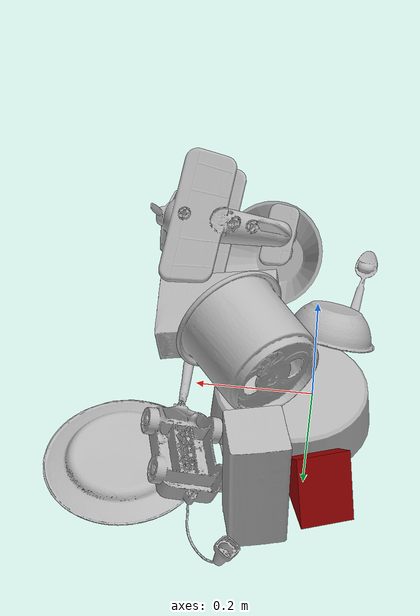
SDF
<sdf version="1.4">
  <world name="default">
    <light name="light1" type="point">
      <pose>0 0 1 0 0 0</pose>
      <diffuse>3 3 3 1</diffuse>
      <specular>3 3 3 1</specular>
    </light>
    <light name="light2" type="point">
      <pose>0 0.5 2 0 0 0</pose>
      <diffuse>1 1 1 1</diffuse>
      <specular>1 1 1 1</specular>
    </light>
    <light name="light3" type="point">
      <pose>0 0.5 2 0 0 0</pose>
      <diffuse>3 3 3 1</diffuse>
      <specular>3 3 3 1</specular>
    </light>
    <scene>
      <ambient>0.7 0.7 0.7</ambient>
    </scene>
    <model name="plate1">
      <link name="link_plate1">
        <collision name="default">
          <geometry>
            <mesh>
              <uri>model://plate/collision_meshes/collision.obj</uri>
              <scale>1.0 1.0 1.0</scale>
            </mesh>
          </geometry>
          <surface>
            <friction>
              <ode>
                <mu>0.5</mu>
                <mu2>0.5</mu2>
              </ode>
            </friction>
          <contact>
        <ode>
            <max_vel>0</max_vel>
            <min_depth>0.0001</min_depth>
            <kp>1e8</kp>
        </ode>
    </contact></surface>
        </collision>
        <visual name="default">
          <geometry>
            <mesh>
              <uri>model://plate/visual_meshes/visual.dae</uri>
              <scale>1.0 1.0 1.0</scale>
            </mesh>
          </geometry>
        </visual>
        <inertial>
          <mass>0.18013060092926025</mass>
          <pose>-0.0006044624606147408 0.0002782579977065325 -0.0010561981471255422 0.0022187543261248163 -0.003225499970721242 0.452618951787785</pose>
          <inertia>
            <ixx>0.00084265455</ixx>
            <iyy>0.000834595</iyy>
            <izz>0.0016481068</izz>
            <ixy>0</ixy>
            <ixz>0</ixz>
            <iyz>0</iyz>
          </inertia>
        </inertial>
      </link>
      <pose>0.2879653871059418 0.19861018657684326 0.01761116087436676 -3.10833293766466 0.013904250779008235 2.605002915261108</pose>
    </model>
    <model name="plate2">
      <link name="link_plate2">
        <collision name="default">
          <geometry>
            <mesh>
              <uri>model://pan_tefal/collision_meshes/collision.obj</uri>
              <scale>1.0 1.0 1.0</scale>
            </mesh>
          </geometry>
          <surface>
            <friction>
              <ode>
                <mu>0.5</mu>
                <mu2>0.5</mu2>
              </ode>
            </friction>
          <contact>
        <ode>
            <max_vel>0</max_vel>
            <min_depth>0.0001</min_depth>
            <kp>1e8</kp>
        </ode>
    </contact></surface>
        </collision>
        <visual name="default">
          <geometry>
            <mesh>
              <uri>model://pan_tefal/visual_meshes/visual.dae</uri>
              <scale>1.0 1.0 1.0</scale>
            </mesh>
          </geometry>
        </visual>
        <inertial>
          <mass>1.1554980278015137</mass>
          <pose>-0.00018001958960667253 3.279018710600212e-05 -0.008514934219419956 0.0008190268412404128 -0.0003301434555644904 -0.33185316474518306</pose>
          <inertia>
            <ixx>0.007976347</ixx>
            <iyy>0.008027771</iyy>
            <izz>0.014682918</izz>
            <ixy>0</ixy>
            <ixz>0</ixz>
            <iyz>0</iyz>
          </inertia>
        </inertial>
      </link>
      <pose>0.03329480439424515 0.06142191216349602 0.03782215341925621 -3.1415919093401175 1.9969257716537158e-06 -3.1177365501213044</pose>
    </model>
    <model name="bowl1">
      <link name="link_bowl1">
        <collision name="default">
          <geometry>
            <mesh>
              <uri>model://bowl/collision_meshes/collision.obj</uri>
              <scale>1.0 1.0 1.0</scale>
            </mesh>
          </geometry>
          <surface>
            <friction>
              <ode>
                <mu>0.5</mu>
                <mu2>0.5</mu2>
              </ode>
            </friction>
          <contact>
        <ode>
            <max_vel>0</max_vel>
            <min_depth>0.0001</min_depth>
            <kp>1e8</kp>
        </ode>
    </contact></surface>
        </collision>
        <visual name="default">
          <geometry>
            <mesh>
              <uri>model://bowl/visual_meshes/visual.dae</uri>
              <scale>1.0 1.0 1.0</scale>
            </mesh>
          </geometry>
        </visual>
        <inertial>
          <mass>0.08154366910457611</mass>
          <pose>0.0002044497523456812 -0.0010302083101123571 -0.0008042664267122746 -0.01576409235239578 0.014546819263349199 0.7140418673414882</pose>
          <inertia>
            <ixx>0.00018731231</ixx>
            <iyy>0.000183127</iyy>
            <izz>0.00031512365</izz>
            <ixy>0</ixy>
            <ixz>0</ixz>
            <iyz>0</iyz>
          </inertia>
        </inertial>
      </link>
      <pose>-0.024274539202451706 -0.11341991275548935 0.06427039206027985 2.717576136007433 -0.3343214032393825 2.173243824510477</pose>
    </model>
    <model name="bowl2">
      <link name="link_bowl2">
        <collision name="default">
          <geometry>
            <mesh>
              <uri>model://bowl_a/collision_meshes/collision.obj</uri>
              <scale>1.0 1.0 1.0</scale>
            </mesh>
          </geometry>
          <surface>
            <friction>
              <ode>
                <mu>0.5</mu>
                <mu2>0.5</mu2>
              </ode>
            </friction>
          <contact>
        <ode>
            <max_vel>0</max_vel>
            <min_depth>0.0001</min_depth>
            <kp>1e8</kp>
        </ode>
    </contact></surface>
        </collision>
        <visual name="default">
          <geometry>
            <mesh>
              <uri>model://bowl_a/visual_meshes/visual.dae</uri>
              <scale>1.0 1.0 1.0</scale>
            </mesh>
          </geometry>
        </visual>
        <inertial>
          <mass>0.4363987147808075</mass>
          <pose>0.0002786752884276211 4.73113359475974e-05 -0.0013765294570475817 -0.0009805318297205425 -0.0010938254473046036 -0.19123908587825994</pose>
          <inertia>
            <ixx>0.0012424473</ixx>
            <iyy>0.001250075</iyy>
            <izz>0.0022097398</izz>
            <ixy>0</ixy>
            <ixz>0</ixz>
            <iyz>0</iyz>
          </inertia>
        </inertial>
      </link>
      <pose>0.09369950741529465 -0.29257234930992126 0.062000639736652374 -0.6794040247640165 0.5237704920042562 0.21314098356725605</pose>
    </model>
    <model name="silverware1">
      <link name="link_silverware1">
        <collision name="default">
          <geometry>
            <mesh>
              <uri>model://spoon/collision_meshes/collision.obj</uri>
              <scale>1.0 1.0 1.0</scale>
            </mesh>
          </geometry>
          <surface>
            <friction>
              <ode>
                <mu>0.5</mu>
                <mu2>0.5</mu2>
              </ode>
            </friction>
          <contact>
        <ode>
            <max_vel>0</max_vel>
            <min_depth>0.0001</min_depth>
            <kp>1e8</kp>
        </ode>
    </contact></surface>
        </collision>
        <visual name="default">
          <geometry>
            <mesh>
              <uri>model://spoon/visual_meshes/visual.dae</uri>
              <scale>1.0 1.0 1.0</scale>
            </mesh>
          </geometry>
        </visual>
        <inertial>
          <mass>0.034700214862823486</mass>
          <pose>-0.00552632100880146 -0.0016034168656915426 -0.0007271654903888702 0.03521477925438783 -0.03906582568380071 0.006150611591128785</pose>
          <inertia>
            <ixx>1.9300821e-06</ixx>
            <iyy>0.00013203312</iyy>
            <izz>0.00013298499</izz>
            <ixy>0</ixy>
            <ixz>0</ixz>
            <iyz>0</iyz>
          </inertia>
        </inertial>
      </link>
      <pose>-0.06672009080648422 -0.2875758111476898 0.008385265246033669 0.0067288727809565975 0.02689297429170479 -1.6941632282853367</pose>
    </model>
    <model name="box1">
      <link name="link_box1">
        <collision name="default">
          <geometry>
            <mesh>
              <uri>model://cracker_box/collision_meshes/collision.obj</uri>
              <scale>1.0 1.0 1.0</scale>
            </mesh>
          </geometry>
          <surface>
            <friction>
              <ode>
                <mu>0.5</mu>
                <mu2>0.5</mu2>
              </ode>
            </friction>
          <contact>
        <ode>
            <max_vel>0</max_vel>
            <min_depth>0.0001</min_depth>
            <kp>1e8</kp>
        </ode>
    </contact></surface>
        </collision>
        <visual name="default">
          <geometry>
            <mesh>
              <uri>model://cracker_box/visual_meshes/visual.dae</uri>
              <scale>1.0 1.0 1.0</scale>
            </mesh>
          </geometry>
        </visual>
        <inertial>
          <mass>1.831273078918457</mass>
          <pose>0.000946414191275835 0.00025434247800149024 -0.0017029533628374338 -0.0003162074786093215 -0.01110648680647863 0.0025467950006863548</pose>
          <inertia>
            <ixx>0.0046579414</ixx>
            <iyy>0.0076911766</iyy>
            <izz>0.010976015</izz>
            <ixy>0</ixy>
            <ixz>0</ixz>
            <iyz>0</iyz>
          </inertia>
        </inertial>
      </link>
      <pose>0.17839263379573822 -0.13384509086608887 0.04483909159898758 3.1195235795593255 -0.12545426583342467 -3.0406853039210153</pose>
    </model>
    <model name="box2">
      <link name="link_box2">
        <collision name="default">
          <geometry>
            <mesh>
              <uri>model://wood_block/collision_meshes/collision.obj</uri>
              <scale>1.0 1.0 1.0</scale>
            </mesh>
          </geometry>
          <surface>
            <friction>
              <ode>
                <mu>0.5</mu>
                <mu2>0.5</mu2>
              </ode>
            </friction>
          <contact>
        <ode>
            <max_vel>0</max_vel>
            <min_depth>0.0001</min_depth>
            <kp>1e8</kp>
        </ode>
    </contact></surface>
        </collision>
        <visual name="default">
          <geometry>
            <mesh>
              <uri>model://wood_block/visual_meshes/visual.dae</uri>
              <scale>1.0 1.0 1.0</scale>
            </mesh>
          </geometry>
        </visual>
        <inertial>
          <mass>1.0038666725158691</mass>
          <pose>-5.813315510749817e-06 -0.000570809468626976 0.0002640858292579651 -0.05221020962952386 -0.005192696059900718 -0.006861377701075274</pose>
          <inertia>
            <ixx>0.0013433257</ixx>
            <iyy>0.0042435657</iyy>
            <izz>0.0042276927</izz>
            <ixy>0</ixy>
            <ixz>0</ixz>
            <iyz>0</iyz>
          </inertia>
        </inertial>
      </link>
      <pose>0.06722499430179596 0.29314976930618286 0.10298321396112442 3.088564467582045 1.55673871882076 -1.3675465101308601</pose>
    </model>
    <model name="cup1">
      <link name="link_cup1">
        <collision name="default">
          <geometry>
            <mesh>
              <uri>model://i_cups/collision_meshes/collision.obj</uri>
              <scale>2.0 2.0 2.0</scale>
            </mesh>
          </geometry>
          <surface>
            <friction>
              <ode>
                <mu>0.5</mu>
                <mu2>0.5</mu2>
              </ode>
            </friction>
          <contact>
        <ode>
            <max_vel>0</max_vel>
            <min_depth>0.0001</min_depth>
            <kp>1e8</kp>
        </ode>
    </contact></surface>
        </collision>
        <visual name="default">
          <geometry>
            <mesh>
              <uri>model://i_cups/visual_meshes/visual.dae</uri>
              <scale>2.0 2.0 2.0</scale>
            </mesh>
          </geometry>
        </visual>
        <inertial>
          <mass>0.6038269996643066</mass>
          <pose>0.00022479970357380807 0.0003359453985467553 -0.001715799910016358 -0.02898255198870416 -0.03987340808103542 -0.3459203892901821</pose>
          <inertia>
            <ixx>0.0033440301</ixx>
            <iyy>0.003373493</iyy>
            <izz>0.0037374943</izz>
            <ixy>0</ixy>
            <ixz>0</ixz>
            <iyz>0</iyz>
          </inertia>
        </inertial>
      </link>
      <pose>0.09657463431358337 0.07883179187774658 0.16564156115055084 -1.4490749915100702 -0.28634735386376226 -2.487061008981374</pose>
    </model>
    <model name="silverware2">
      <link name="link_silverware2">
        <collision name="default">
          <geometry>
            <mesh>
              <uri>model://knife/collision_meshes/collision.obj</uri>
              <scale>1.0 1.0 1.0</scale>
            </mesh>
          </geometry>
          <surface>
            <friction>
              <ode>
                <mu>0.5</mu>
                <mu2>0.5</mu2>
              </ode>
            </friction>
          <contact>
        <ode>
            <max_vel>0</max_vel>
            <min_depth>0.0001</min_depth>
            <kp>1e8</kp>
        </ode>
    </contact></surface>
        </collision>
        <visual name="default">
          <geometry>
            <mesh>
              <uri>model://knife/visual_meshes/visual.dae</uri>
              <scale>1.0 1.0 1.0</scale>
            </mesh>
          </geometry>
        </visual>
        <inertial>
          <mass>0.01351180113852024</mass>
          <pose>-0.023785246536135674 0.0015275131445378065 5.062015407020226e-05 0.073058244240525 0.017248418380522417 -0.007409818685807072</pose>
          <inertia>
            <ixx>3.8351965e-07</ixx>
            <iyy>5.1910156e-05</iyy>
            <izz>5.2033673e-05</izz>
            <ixy>0</ixy>
            <ixz>0</ixz>
            <iyz>0</iyz>
          </inertia>
        </inertial>
      </link>
      <pose>0.21833349764347076 0.06046157702803612 0.007997696287930012 -0.0632232146589897 -0.01355326397198924 1.5858884217969231</pose>
    </model>
    <model name="silverware3">
      <link name="link_silverware3">
        <collision name="default">
          <geometry>
            <mesh>
              <uri>model://fork/collision_meshes/collision.obj</uri>
              <scale>1.0 1.0 1.0</scale>
            </mesh>
          </geometry>
          <surface>
            <friction>
              <ode>
                <mu>0.5</mu>
                <mu2>0.5</mu2>
              </ode>
            </friction>
          <contact>
        <ode>
            <max_vel>0</max_vel>
            <min_depth>0.0001</min_depth>
            <kp>1e8</kp>
        </ode>
    </contact></surface>
        </collision>
        <visual name="default">
          <geometry>
            <mesh>
              <uri>model://fork/visual_meshes/visual.dae</uri>
              <scale>1.0 1.0 1.0</scale>
            </mesh>
          </geometry>
        </visual>
        <inertial>
          <mass>0.030749449506402016</mass>
          <pose>-0.029570044949650764 0.0004658822435885668 0.00032188615296036005 -0.013551266353778695 -0.010977839115777554 0.014453902178384312</pose>
          <inertia>
            <ixx>1.0779423e-06</ixx>
            <iyy>8.0277954e-05</iyy>
            <izz>8.076011e-05</izz>
            <ixy>0</ixy>
            <ixz>0</ixz>
            <iyz>0</iyz>
          </inertia>
        </inertial>
      </link>
      <pose>0.21137726306915283 -0.30265742540359497 0.005689309444278479 -0.18853648896443906 0.024858262810093006 0.6857184409356251</pose>
    </model>
    <model name="toy1">
      <link name="link_toy1">
        <collision name="default">
          <geometry>
            <mesh>
              <uri>model://e_toy_airplane/collision_meshes/collision.obj</uri>
              <scale>1.0 1.0 1.0</scale>
            </mesh>
          </geometry>
          <surface>
            <friction>
              <ode>
                <mu>0.5</mu>
                <mu2>0.5</mu2>
              </ode>
            </friction>
          <contact>
        <ode>
            <max_vel>0</max_vel>
            <min_depth>0.0001</min_depth>
            <kp>1e8</kp>
        </ode>
    </contact></surface>
        </collision>
        <visual name="default">
          <geometry>
            <mesh>
              <uri>model://e_toy_airplane/visual_meshes/visual.dae</uri>
              <scale>1.0 1.0 1.0</scale>
            </mesh>
          </geometry>
        </visual>
        <inertial>
          <mass>0.01770107075572014</mass>
          <pose>0.00011740486661437899 -2.248296732432209e-05 -0.011187206022441387 0.005518513464699853 0.009228302242376646 0.15041570361631973</pose>
          <inertia>
            <ixx>5.4025695e-06</ixx>
            <iyy>5.3473045e-06</iyy>
            <izz>1.6236847e-06</izz>
            <ixy>0</ixy>
            <ixz>0</ixz>
            <iyz>0</iyz>
          </inertia>
        </inertial>
      </link>
      <pose>0.12198567390441895 0.1767553836107254 0.012126456014811993 -1.7527967019189763 -0.20230436355080642 -2.5939114250893205</pose>
    </model>
    <model name="toy2">
      <link name="link_toy2">
        <collision name="default">
          <geometry>
            <mesh>
              <uri>model://a_toy_airplane/collision_meshes/collision.obj</uri>
              <scale>1.0 1.0 1.0</scale>
            </mesh>
          </geometry>
          <surface>
            <friction>
              <ode>
                <mu>0.5</mu>
                <mu2>0.5</mu2>
              </ode>
            </friction>
          <contact>
        <ode>
            <max_vel>0</max_vel>
            <min_depth>0.0001</min_depth>
            <kp>1e8</kp>
        </ode>
    </contact></surface>
        </collision>
        <visual name="default">
          <geometry>
            <mesh>
              <uri>model://a_toy_airplane/visual_meshes/visual.dae</uri>
              <scale>1.0 1.0 1.0</scale>
            </mesh>
          </geometry>
        </visual>
        <inertial>
          <mass>1.6391528844833374</mass>
          <pose>0.02516508661210537 -0.003707319963723421 -0.0011962438002228737 -0.012016999892079352 -0.14663507149587088 0.004149061575203148</pose>
          <inertia>
            <ixx>0.0059525487</ixx>
            <iyy>0.008674072</iyy>
            <izz>0.01015627</izz>
            <ixy>0</ixy>
            <ixz>0</ixz>
            <iyz>0</iyz>
          </inertia>
        </inertial>
      </link>
      <pose>0.18687373399734497 -0.28445079922676086 0.12231127917766571 -0.6985196642365336 0.21572087071576412 -0.3453630563102045</pose>
    </model>
    <model name="toy3">
      <link name="link_toy3">
        <collision name="default">
          <geometry>
            <mesh>
              <uri>model://g_lego_duplo/collision_meshes/collision.obj</uri>
              <scale>1.0 1.0 1.0</scale>
            </mesh>
          </geometry>
          <surface>
            <friction>
              <ode>
                <mu>0.5</mu>
                <mu2>0.5</mu2>
              </ode>
            </friction>
          <contact>
        <ode>
            <max_vel>0</max_vel>
            <min_depth>0.0001</min_depth>
            <kp>1e8</kp>
        </ode>
    </contact></surface>
        </collision>
        <visual name="default">
          <geometry>
            <mesh>
              <uri>model://g_lego_duplo/visual_meshes/visual.dae</uri>
              <scale>1.0 1.0 1.0</scale>
            </mesh>
          </geometry>
        </visual>
        <inertial>
          <mass>0.5092288255691528</mass>
          <pose>-0.05004768446087837 0.0017554641235619783 0.0038806775119155645 0.010963010010498962 0.03810823590924119 -0.09653024292159736</pose>
          <inertia>
            <ixx>0.00073787844</ixx>
            <iyy>0.002230844</iyy>
            <izz>0.002790868</izz>
            <ixy>0</ixy>
            <ixz>0</ixz>
            <iyz>0</iyz>
          </inertia>
        </inertial>
      </link>
      <pose>0.1678324043750763 0.264126181602478 0.042020395398139954 2.75527646735149 0.0984507915716924 1.8537387411678086</pose>
    </model>
    <model name="toy4">
      <link name="link_toy4">
        <collision name="default">
          <geometry>
            <mesh>
              <uri>model://a_lego_duplo/collision_meshes/collision.obj</uri>
              <scale>1.0 1.0 1.0</scale>
            </mesh>
          </geometry>
          <surface>
            <friction>
              <ode>
                <mu>0.5</mu>
                <mu2>0.5</mu2>
              </ode>
            </friction>
          <contact>
        <ode>
            <max_vel>0</max_vel>
            <min_depth>0.0001</min_depth>
            <kp>1e8</kp>
        </ode>
    </contact></surface>
        </collision>
        <visual name="default">
          <geometry>
            <mesh>
              <uri>model://a_lego_duplo/visual_meshes/visual.dae</uri>
              <scale>1.0 1.0 1.0</scale>
            </mesh>
          </geometry>
        </visual>
        <inertial>
          <mass>0.03161923587322235</mass>
          <pose>-0.00011337598698446527 0.00018517524586059153 0.00036926084430888295 -0.014116977368405541 -0.00012565500284871778 6.143069663272407e-05</pose>
          <inertia>
            <ixx>4.0538393e-06</ixx>
            <iyy>9.081488e-06</iyy>
            <izz>1.1249442e-05</izz>
            <ixy>0</ixy>
            <ixz>0</ixz>
            <iyz>0</iyz>
          </inertia>
        </inertial>
      </link>
      <pose>0.06338146328926086 -0.32565629482269287 0.012124847620725632 -3.1412804497913607 -0.015580925703830451 -3.081783375984751</pose>
    </model>
    <model name="toy5">
      <link name="link_toy5">
        <collision name="default">
          <geometry>
            <mesh>
              <uri>model://prism/collision_meshes/collision.obj</uri>
              <scale>1.0 1.0 1.0</scale>
            </mesh>
          </geometry>
          <surface>
            <friction>
              <ode>
                <mu>0.5</mu>
                <mu2>0.5</mu2>
              </ode>
            </friction>
          <contact>
        <ode>
            <max_vel>0</max_vel>
            <min_depth>0.0001</min_depth>
            <kp>1e8</kp>
        </ode>
    </contact></surface>
        </collision>
        <visual name="default">
          <geometry>
            <mesh>
              <uri>model://prism/visual_meshes/visual.dae</uri>
              <scale>1.0 1.0 1.0</scale>
            </mesh>
          </geometry>
        </visual>
        <inertial>
          <mass>0.5650969743728638</mass>
          <pose>-9.85359656624496e-05 -4.96157269935793e-07 -0.0033869100734591484 0.0 0.006559179369129768 0.0</pose>
          <inertia>
            <ixx>0.00050999306</ixx>
            <iyy>0.00061633316</iyy>
            <izz>0.00075493456</izz>
            <ixy>0</ixy>
            <ixz>0</ixz>
            <iyz>0</iyz>
          </inertia>
        </inertial>
      </link>
      <pose>-0.02652765065431595 0.2334388941526413 0.04270409792661667 3.141592136714257 -1.1941378299741652 -1.2092632285710652</pose>
    </model>
  <physics type="ode">
      <max_contacts>50</max_contacts>
      <ode>
        <solver>
          <type>quick</type>
          <iters>75</iters>
        </solver>
        <constraints>
          <contact_max_correcting_vel>0</contact_max_correcting_vel>
          <contact_surface_layer>0</contact_surface_layer>
        </constraints>
      </ode>
    </physics></world>
</sdf>
